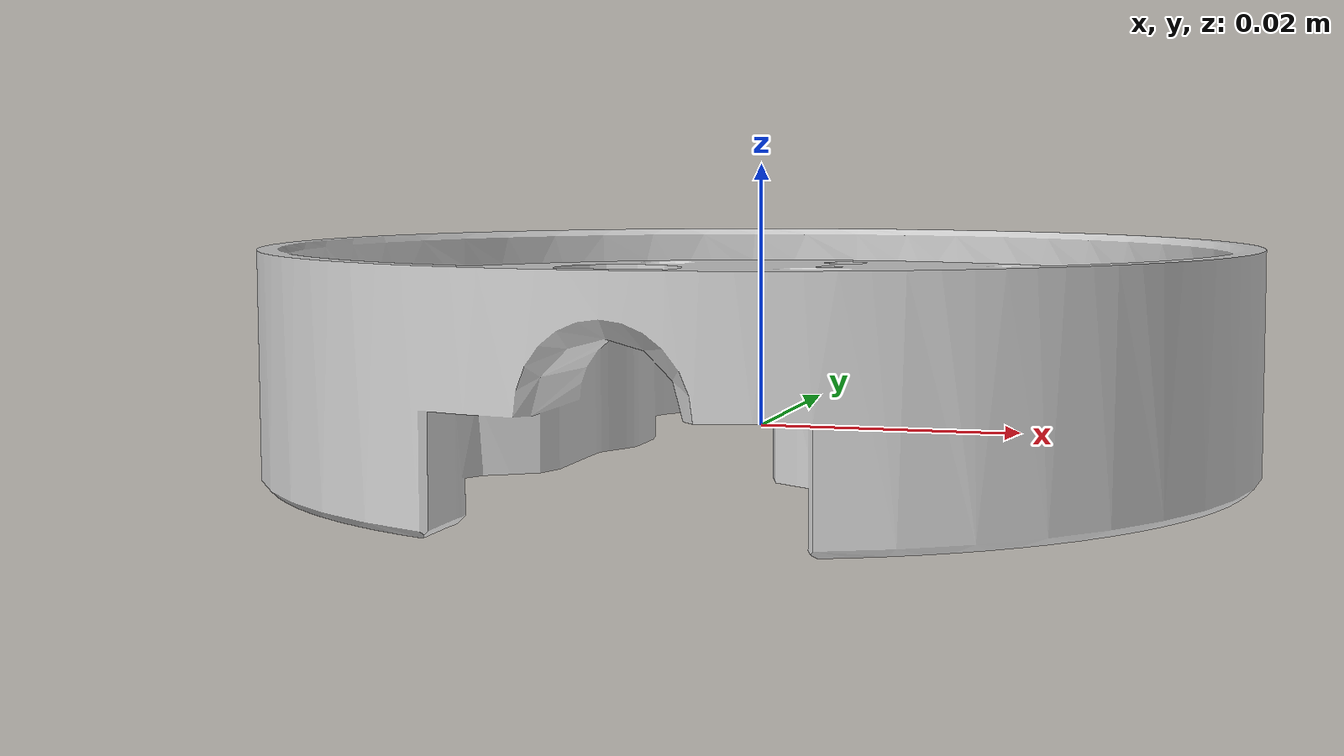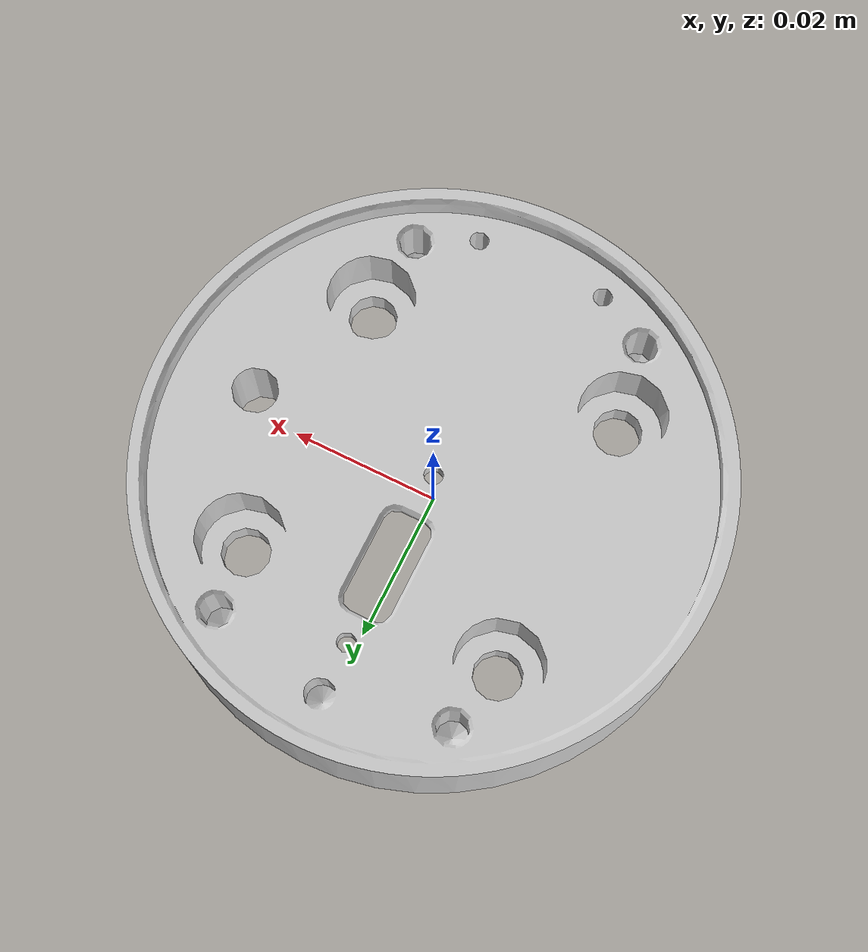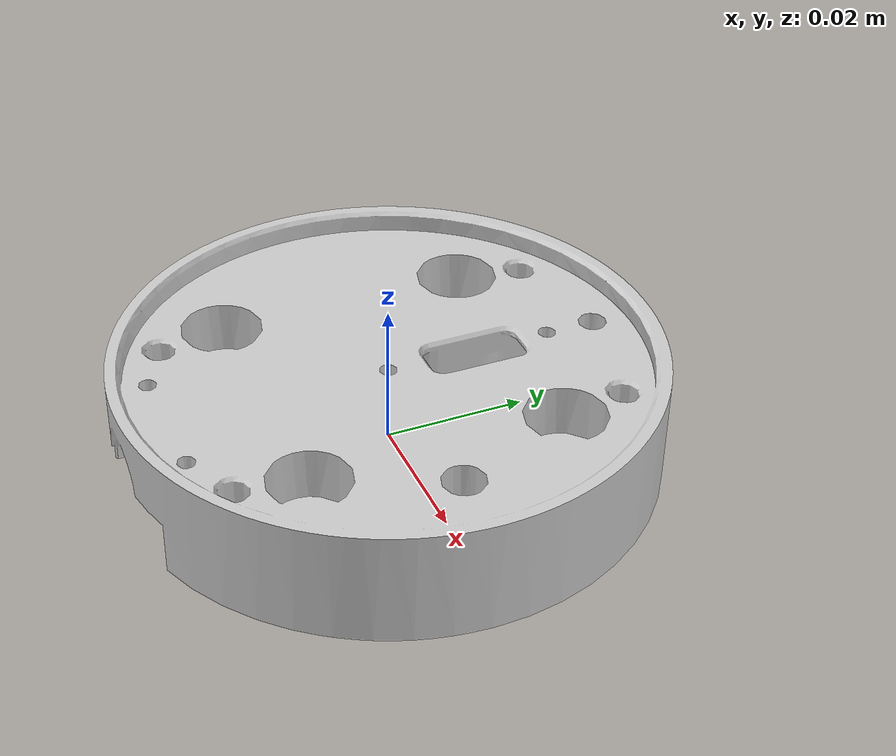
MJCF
<mujoco model="robotiq_hande_cb_adapter">
  <default>
    <default class="visual">
      <geom group="2" type="mesh" contype="0" conaffinity="0"/>
    </default>
    <default class="collision">
      <geom group="3" type="mesh"/>
    </default>
  </default>
  <asset>
    <material name="material_robotiq_hande_cb_adapter_0" specular="0.20000000000000004" shininess="1.0" rgba="0.80000000 0.80000000 0.80000000 1.0"/>
    <mesh file="robotiq_hande_cb_adapter.obj"/>
  </asset>
  <worldbody>
    <body name="robotiq_hande_cb_adapter">
      <geom material="material_robotiq_hande_cb_adapter_0" mesh="robotiq_hande_cb_adapter" class="visual"/>
      <geom mesh="robotiq_hande_cb_adapter" class="collision"/>
    </body>
  </worldbody>
</mujoco>
